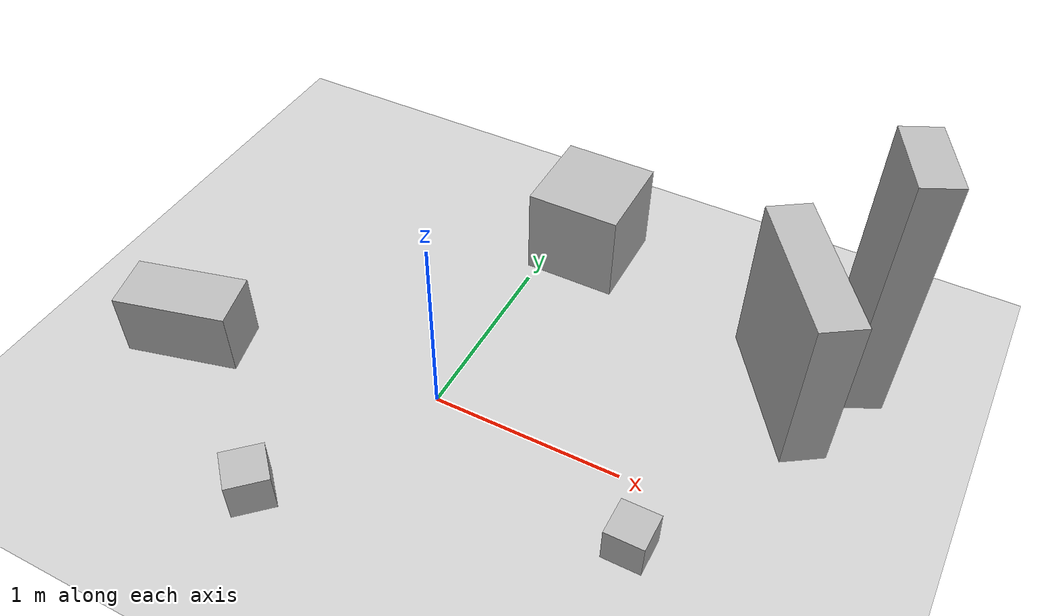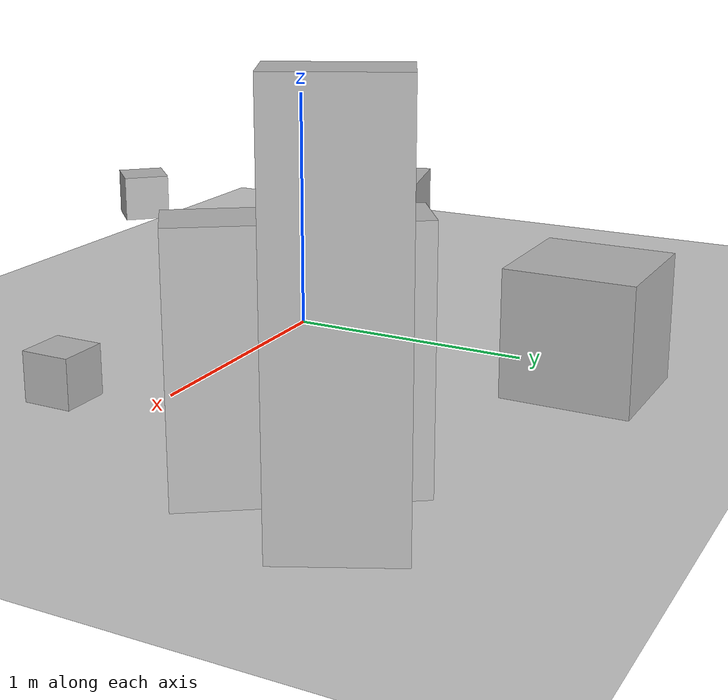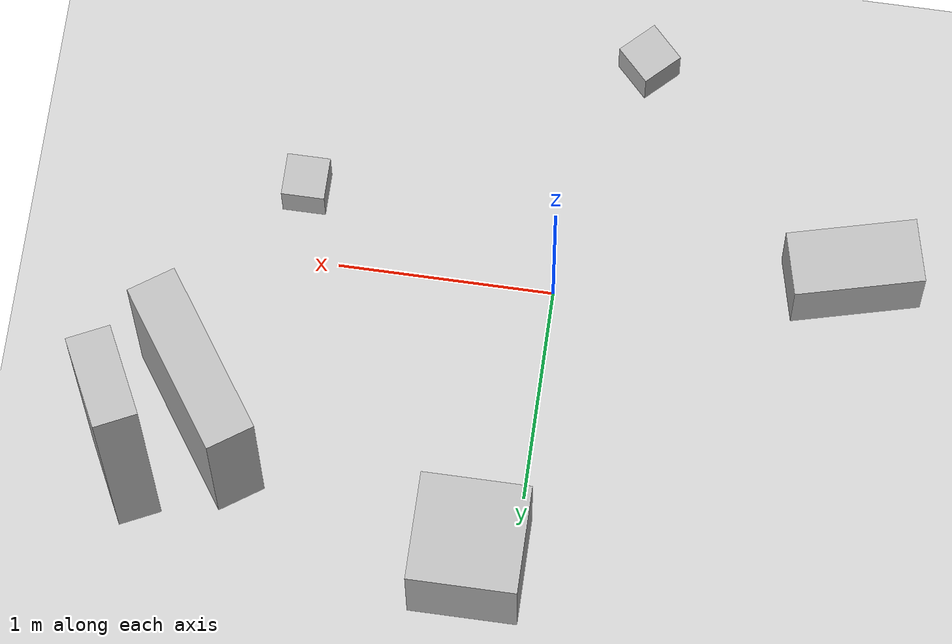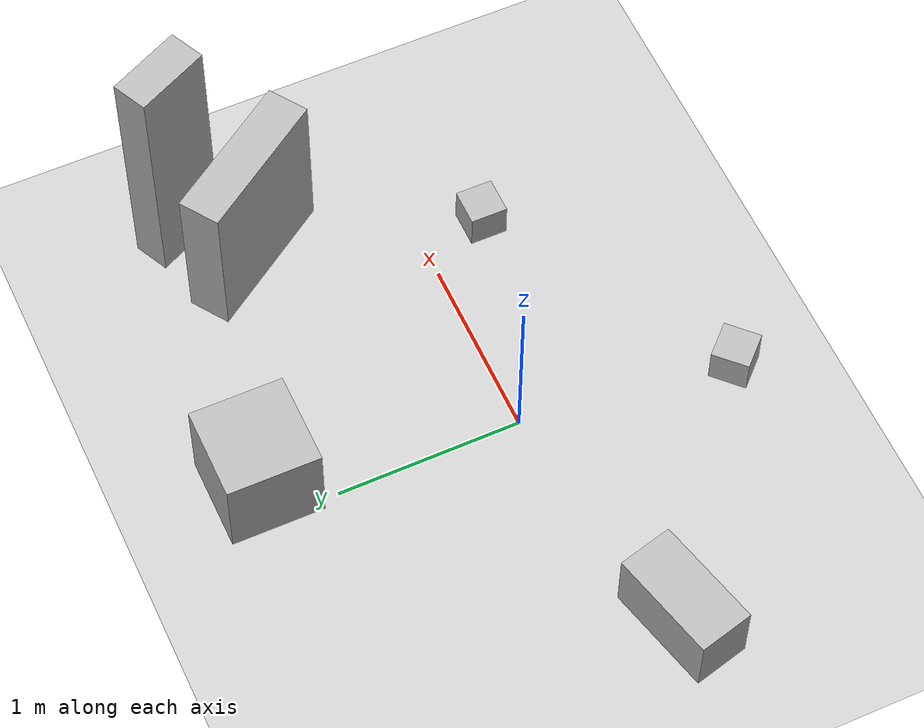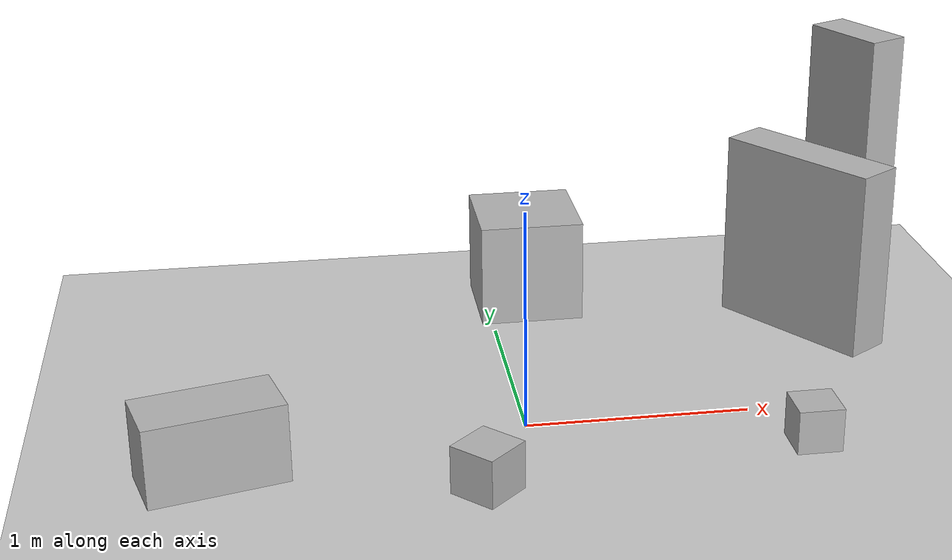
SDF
<sdf version="1.6">
 <world name="my_world">
  <scene>
   <ambient>0.85 0.85 0.85 1</ambient>
   <background>0.25 0.25 0.25 1</background>
   <shadows>true</shadows>
  </scene>
  <include><uri>model://ground_plane</uri></include>
  <include><uri>model://object</uri></include>
  <include><uri>model://object1</uri></include>
  <include><uri>model://object2</uri></include>
  <include><uri>model://object3</uri></include>
  <include><uri>model://object4</uri></include>
  <include><uri>model://object5</uri></include>
  <light name="sun" type="directional">
   <pose>-1 0 5 0 0 0</pose>
   <diffuse>1 1 1 1</diffuse>
   <specular>0.2 0.2 0.2 1</specular>
   <attenuation>
    <range>1000</range>
    <constant>0.2</constant>
    <linear>0.01</linear>
    <quadratic>0.001</quadratic>
   </attenuation>
   <direction>1.5 0.1 -0.9</direction>
  </light>
 </world>
</sdf>

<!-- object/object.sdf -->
<sdf version='1.6'>
    <model name="Object">
      <static>false</static>

      <link name='cube'>
        <pose>1.2 -0.34 0.1 0 0 0</pose>

        <collision name='collision'>
          <geometry>
            <box>
              <size>.2 .2 .2</size>
            </box>
          </geometry>
        </collision>

        <surface>
          <friction>
            <ode>
              <mu>1</mu>
              <mu2>1</mu2>
              <slip1>1.0</slip1>
              <slip2>1.0</slip2>
            </ode>
          </friction>
        </surface>

        <visual name='visual'>
          <geometry>
            <box>
              <size>.2 .2 .2</size>
            </box>
          </geometry>
        </visual>
      </link>

    </model>
  </sdf>

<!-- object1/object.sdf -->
<sdf version='1.6'>
    <model name="Object1">
      <static>false</static>

      <link name='cube'>
        <pose>-1.35 -0.24 0.1 0 0 0.25</pose>

        <collision name='collision'>
          <geometry>
            <box>
              <size>.6 .3 .5</size>
            </box>
          </geometry>
        </collision>

        <surface>
          <friction>
            <ode>
              <mu>1</mu>
              <mu2>1</mu2>
              <slip1>1.0</slip1>
              <slip2>1.0</slip2>
            </ode>
          </friction>
        </surface>

        <visual name='visual'>
          <geometry>
            <box>
              <size>.6 .3 .5</size>
            </box>
          </geometry>
        </visual>
      </link>

    </model>
  </sdf>

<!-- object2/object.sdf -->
<sdf version='1.6'>
    <model name="Object2">
      <static>false</static>

      <link name='cube'>
        <pose>1.5 0.84 0.45 0 0 0.6</pose>

        <collision name='collision'>
          <geometry>
            <box>
              <size>.23 .82 .9</size>
            </box>
          </geometry>
        </collision>

        <surface>
          <friction>
            <ode>
              <mu>1</mu>
              <mu2>1</mu2>
              <slip1>1.0</slip1>
              <slip2>1.0</slip2>
            </ode>
          </friction>
        </surface>

        <visual name='visual'>
          <geometry>
            <box>
              <size>.23 .82 .9</size>
            </box>
          </geometry>
        </visual>
      </link>

    </model>
  </sdf>

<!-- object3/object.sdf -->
<sdf version='1.6'>
    <model name="Object3">
      <static>false</static>

      <link name='cube'>
        <pose>0.2 1.34 0.25 0 0 0</pose>

        <collision name='collision'>
          <geometry>
            <box>
              <size>.5 .5 .5</size>
            </box>
          </geometry>
        </collision>

        <surface>
          <friction>
            <ode>
              <mu>1</mu>
              <mu2>1</mu2>
              <slip1>1.0</slip1>
              <slip2>1.0</slip2>
            </ode>
          </friction>
        </surface>

        <visual name='visual'>
          <geometry>
            <box>
              <size>.5 .5 .5</size>
            </box>
          </geometry>
        </visual>
      </link>

    </model>
  </sdf>

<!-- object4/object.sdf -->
<sdf version='1.6'>
    <model name="Object4">
      <static>false</static>

      <link name='cube'>
        <pose>-.3 -1.04 0.4 0 0 -0.8</pose>

        <collision name='collision'>
          <geometry>
            <box>
              <size>.3 .2 .8</size>
            </box>
          </geometry>
        </collision>

        <surface>
          <friction>
            <ode>
              <mu>1</mu>
              <mu2>1</mu2>
              <slip1>1.0</slip1>
              <slip2>1.0</slip2>
            </ode>
          </friction>
        </surface>

        <visual name='visual'>
          <geometry>
            <box>
              <size>.2 .2 .2</size>
            </box>
          </geometry>
        </visual>
      </link>

    </model>
  </sdf>

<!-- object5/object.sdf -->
<sdf version='1.6'>
    <model name="Object5">
      <static>false</static>

      <link name='cube'>
        <pose>1.8 1.14 0.7 0 0 0.45</pose>

        <collision name='collision'>
          <geometry>
            <box>
              <size>.2 .42 1.4</size>
            </box>
          </geometry>
        </collision>

        <surface>
          <friction>
            <ode>
              <mu>1</mu>
              <mu2>1</mu2>
              <slip1>1.0</slip1>
              <slip2>1.0</slip2>
            </ode>
          </friction>
        </surface>

        <visual name='visual'>
          <geometry>
            <box>
              <size>.2 .42 1.4</size>
            </box>
          </geometry>
        </visual>
      </link>

    </model>
  </sdf>
